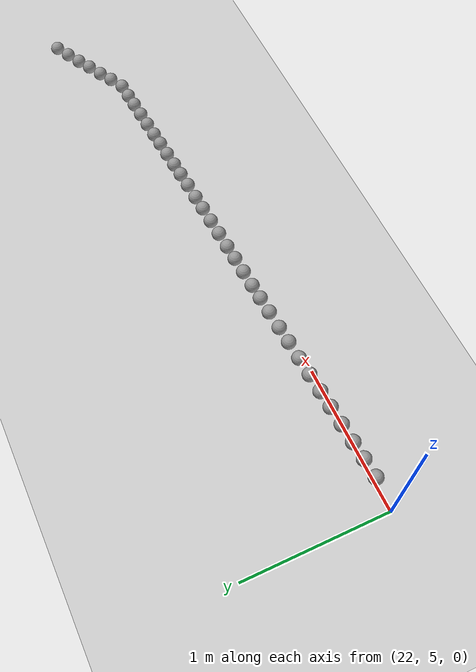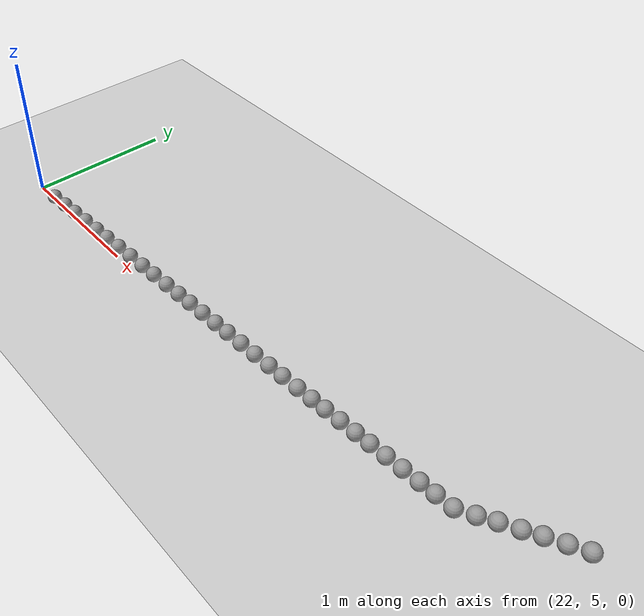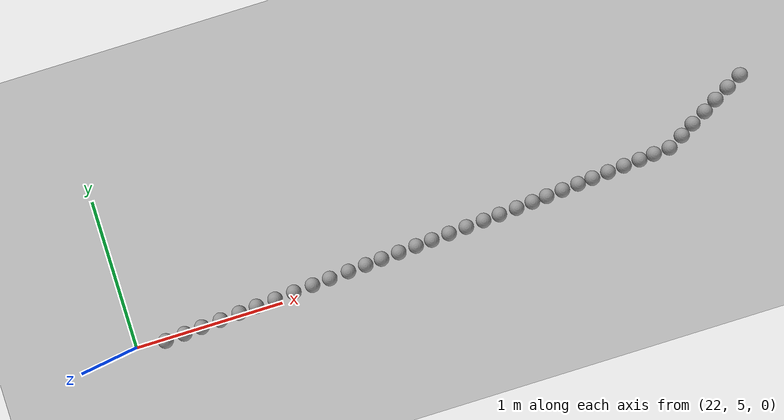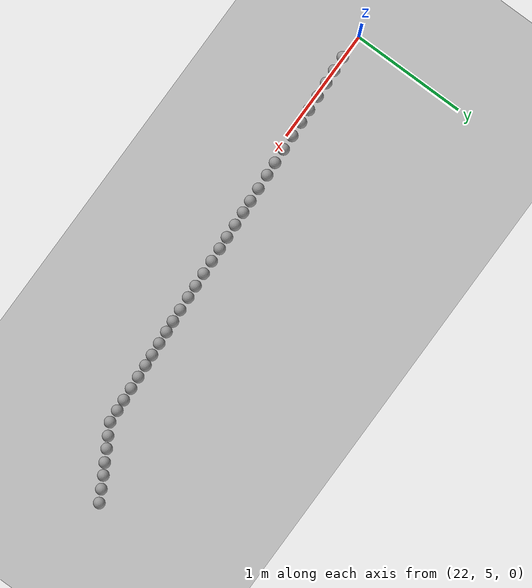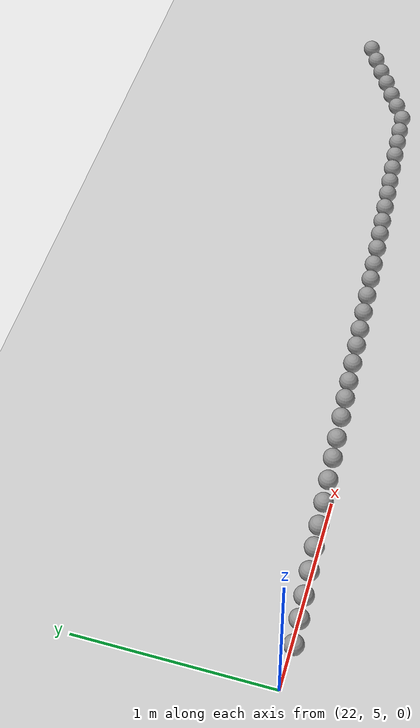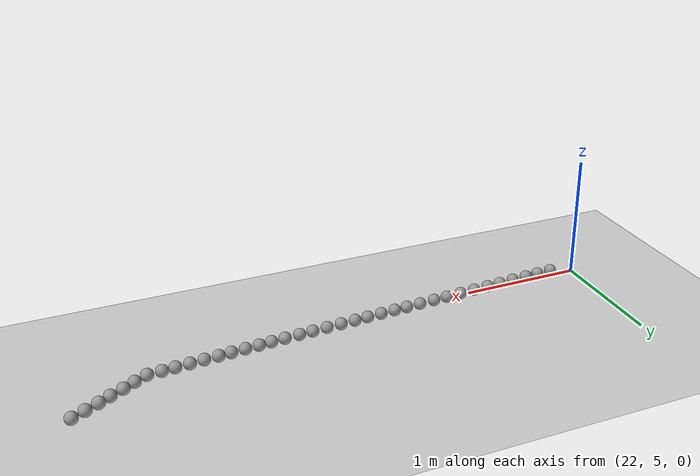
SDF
<sdf version="1.6">
 <world name="default">
  <model name="ground_plane">
   <static>1</static>
   <link name="link">
    <collision name="collision">
     <geometry><plane><normal>0 0 1</normal><size>100 100</size></plane></geometry>
     <surface><friction><ode><mu>100</mu><mu2>50</mu2></ode></friction></surface>
    </collision>
    <visual name="visual">
     <cast_shadows>0</cast_shadows>
     <geometry><plane><normal>0 0 1</normal><size>100 100</size></plane></geometry>
     <material>
      <script><uri>file://media/materials/scripts/gazebo.material</uri><name>Gazebo/Grey</name></script>
     </material>
    </visual>
   </link>
  </model>
  <model name="unit_sphere_0_304">
   <pose>26.300000 5.538000 0.050000 0 -0 0</pose>
   <link name="link">
    <inertial>
     <mass>1</mass>
     <inertia><ixx>0.1</ixx><ixy>0</ixy><ixz>0</ixz><iyy>0.1</iyy><iyz>0</iyz><izz>0.1</izz></inertia>
    </inertial>
    <collision name="collision"><geometry><sphere><radius>0.050000</radius></sphere></geometry></collision>
    <visual name="visual">
     <geometry><sphere><radius>0.050000</radius></sphere></geometry>
     <material>
      <script><name>Gazebo/Grey</name><uri>file://media/materials/scripts/gazebo.material</uri></script>
     </material>
    </visual>
   </link>
  </model>
  <model name="unit_sphere_0_305">
   <pose>26.200000 5.485000 0.050000 0 -0 0</pose>
   <link name="link">
    <inertial>
     <mass>1</mass>
     <inertia><ixx>0.1</ixx><ixy>0</ixy><ixz>0</ixz><iyy>0.1</iyy><iyz>0</iyz><izz>0.1</izz></inertia>
    </inertial>
    <collision name="collision"><geometry><sphere><radius>0.050000</radius></sphere></geometry></collision>
    <visual name="visual">
     <geometry><sphere><radius>0.050000</radius></sphere></geometry>
     <material>
      <script><name>Gazebo/Grey</name><uri>file://media/materials/scripts/gazebo.material</uri></script>
     </material>
    </visual>
   </link>
  </model>
  <model name="unit_sphere_0_306">
   <pose>26.100000 5.432000 0.050000 0 -0 0</pose>
   <link name="link">
    <inertial>
     <mass>1</mass>
     <inertia><ixx>0.1</ixx><ixy>0</ixy><ixz>0</ixz><iyy>0.1</iyy><iyz>0</iyz><izz>0.1</izz></inertia>
    </inertial>
    <collision name="collision"><geometry><sphere><radius>0.050000</radius></sphere></geometry></collision>
    <visual name="visual">
     <geometry><sphere><radius>0.050000</radius></sphere></geometry>
     <material>
      <script><name>Gazebo/Grey</name><uri>file://media/materials/scripts/gazebo.material</uri></script>
     </material>
    </visual>
   </link>
  </model>
  <model name="unit_sphere_0_307">
   <pose>26.010000 5.379000 0.050000 0 -0 0</pose>
   <link name="link">
    <inertial>
     <mass>1</mass>
     <inertia><ixx>0.1</ixx><ixy>0</ixy><ixz>0</ixz><iyy>0.1</iyy><iyz>0</iyz><izz>0.1</izz></inertia>
    </inertial>
    <collision name="collision"><geometry><sphere><radius>0.050000</radius></sphere></geometry></collision>
    <visual name="visual">
     <geometry><sphere><radius>0.050000</radius></sphere></geometry>
     <material>
      <script><name>Gazebo/Grey</name><uri>file://media/materials/scripts/gazebo.material</uri></script>
     </material>
    </visual>
   </link>
  </model>
  <model name="unit_sphere_0_308">
   <pose>25.910000 5.326000 0.050000 0 -0 0</pose>
   <link name="link">
    <inertial>
     <mass>1</mass>
     <inertia><ixx>0.1</ixx><ixy>0</ixy><ixz>0</ixz><iyy>0.1</iyy><iyz>0</iyz><izz>0.1</izz></inertia>
    </inertial>
    <collision name="collision"><geometry><sphere><radius>0.050000</radius></sphere></geometry></collision>
    <visual name="visual">
     <geometry><sphere><radius>0.050000</radius></sphere></geometry>
     <material>
      <script><name>Gazebo/Grey</name><uri>file://media/materials/scripts/gazebo.material</uri></script>
     </material>
    </visual>
   </link>
  </model>
  <model name="unit_sphere_0_309">
   <pose>25.820000 5.273000 0.050000 0 -0 0</pose>
   <link name="link">
    <inertial>
     <mass>1</mass>
     <inertia><ixx>0.1</ixx><ixy>0</ixy><ixz>0</ixz><iyy>0.1</iyy><iyz>0</iyz><izz>0.1</izz></inertia>
    </inertial>
    <collision name="collision"><geometry><sphere><radius>0.050000</radius></sphere></geometry></collision>
    <visual name="visual">
     <geometry><sphere><radius>0.050000</radius></sphere></geometry>
     <material>
      <script><name>Gazebo/Grey</name><uri>file://media/materials/scripts/gazebo.material</uri></script>
     </material>
    </visual>
   </link>
  </model>
  <model name="unit_sphere_0_310">
   <pose>25.720000 5.220000 0.050000 0 -0 0</pose>
   <link name="link">
    <inertial>
     <mass>1</mass>
     <inertia><ixx>0.1</ixx><ixy>0</ixy><ixz>0</ixz><iyy>0.1</iyy><iyz>0</iyz><izz>0.1</izz></inertia>
    </inertial>
    <collision name="collision"><geometry><sphere><radius>0.050000</radius></sphere></geometry></collision>
    <visual name="visual">
     <geometry><sphere><radius>0.050000</radius></sphere></geometry>
     <material>
      <script><name>Gazebo/Grey</name><uri>file://media/materials/scripts/gazebo.material</uri></script>
     </material>
    </visual>
   </link>
  </model>
  <model name="unit_sphere_0_311">
   <pose>25.610000 5.212000 0.050000 0 -0 0</pose>
   <link name="link">
    <inertial>
     <mass>1</mass>
     <inertia><ixx>0.1</ixx><ixy>0</ixy><ixz>0</ixz><iyy>0.1</iyy><iyz>0</iyz><izz>0.1</izz></inertia>
    </inertial>
    <collision name="collision"><geometry><sphere><radius>0.050000</radius></sphere></geometry></collision>
    <visual name="visual">
     <geometry><sphere><radius>0.050000</radius></sphere></geometry>
     <material>
      <script><name>Gazebo/Grey</name><uri>file://media/materials/scripts/gazebo.material</uri></script>
     </material>
    </visual>
   </link>
  </model>
  <model name="unit_sphere_0_312">
   <pose>25.510000 5.204000 0.050000 0 -0 0</pose>
   <link name="link">
    <inertial>
     <mass>1</mass>
     <inertia><ixx>0.1</ixx><ixy>0</ixy><ixz>0</ixz><iyy>0.1</iyy><iyz>0</iyz><izz>0.1</izz></inertia>
    </inertial>
    <collision name="collision"><geometry><sphere><radius>0.050000</radius></sphere></geometry></collision>
    <visual name="visual">
     <geometry><sphere><radius>0.050000</radius></sphere></geometry>
     <material>
      <script><name>Gazebo/Grey</name><uri>file://media/materials/scripts/gazebo.material</uri></script>
     </material>
    </visual>
   </link>
  </model>
  <model name="unit_sphere_0_313">
   <pose>25.400000 5.196000 0.050000 0 -0 0</pose>
   <link name="link">
    <inertial>
     <mass>1</mass>
     <inertia><ixx>0.1</ixx><ixy>0</ixy><ixz>0</ixz><iyy>0.1</iyy><iyz>0</iyz><izz>0.1</izz></inertia>
    </inertial>
    <collision name="collision"><geometry><sphere><radius>0.050000</radius></sphere></geometry></collision>
    <visual name="visual">
     <geometry><sphere><radius>0.050000</radius></sphere></geometry>
     <material>
      <script><name>Gazebo/Grey</name><uri>file://media/materials/scripts/gazebo.material</uri></script>
     </material>
    </visual>
   </link>
  </model>
  <model name="unit_sphere_0_314">
   <pose>25.290000 5.188000 0.050000 0 -0 0</pose>
   <link name="link">
    <inertial>
     <mass>1</mass>
     <inertia><ixx>0.1</ixx><ixy>0</ixy><ixz>0</ixz><iyy>0.1</iyy><iyz>0</iyz><izz>0.1</izz></inertia>
    </inertial>
    <collision name="collision"><geometry><sphere><radius>0.050000</radius></sphere></geometry></collision>
    <visual name="visual">
     <geometry><sphere><radius>0.050000</radius></sphere></geometry>
     <material>
      <script><name>Gazebo/Grey</name><uri>file://media/materials/scripts/gazebo.material</uri></script>
     </material>
    </visual>
   </link>
  </model>
  <model name="unit_sphere_0_315">
   <pose>25.180000 5.180000 0.050000 0 -0 0</pose>
   <link name="link">
    <inertial>
     <mass>1</mass>
     <inertia><ixx>0.1</ixx><ixy>0</ixy><ixz>0</ixz><iyy>0.1</iyy><iyz>0</iyz><izz>0.1</izz></inertia>
    </inertial>
    <collision name="collision"><geometry><sphere><radius>0.050000</radius></sphere></geometry></collision>
    <visual name="visual">
     <geometry><sphere><radius>0.050000</radius></sphere></geometry>
     <material>
      <script><name>Gazebo/Grey</name><uri>file://media/materials/scripts/gazebo.material</uri></script>
     </material>
    </visual>
   </link>
  </model>
  <model name="unit_sphere_0_316">
   <pose>25.080000 5.172000 0.050000 0 -0 0</pose>
   <link name="link">
    <inertial>
     <mass>1</mass>
     <inertia><ixx>0.1</ixx><ixy>0</ixy><ixz>0</ixz><iyy>0.1</iyy><iyz>0</iyz><izz>0.1</izz></inertia>
    </inertial>
    <collision name="collision"><geometry><sphere><radius>0.050000</radius></sphere></geometry></collision>
    <visual name="visual">
     <geometry><sphere><radius>0.050000</radius></sphere></geometry>
     <material>
      <script><name>Gazebo/Grey</name><uri>file://media/materials/scripts/gazebo.material</uri></script>
     </material>
    </visual>
   </link>
  </model>
  <model name="unit_sphere_0_317">
   <pose>24.970000 5.164000 0.050000 0 -0 0</pose>
   <link name="link">
    <inertial>
     <mass>1</mass>
     <inertia><ixx>0.1</ixx><ixy>0</ixy><ixz>0</ixz><iyy>0.1</iyy><iyz>0</iyz><izz>0.1</izz></inertia>
    </inertial>
    <collision name="collision"><geometry><sphere><radius>0.050000</radius></sphere></geometry></collision>
    <visual name="visual">
     <geometry><sphere><radius>0.050000</radius></sphere></geometry>
     <material>
      <script><name>Gazebo/Grey</name><uri>file://media/materials/scripts/gazebo.material</uri></script>
     </material>
    </visual>
   </link>
  </model>
  <model name="unit_sphere_0_318">
   <pose>24.860000 5.156000 0.050000 0 -0 0</pose>
   <link name="link">
    <inertial>
     <mass>1</mass>
     <inertia><ixx>0.1</ixx><ixy>0</ixy><ixz>0</ixz><iyy>0.1</iyy><iyz>0</iyz><izz>0.1</izz></inertia>
    </inertial>
    <collision name="collision"><geometry><sphere><radius>0.050000</radius></sphere></geometry></collision>
    <visual name="visual">
     <geometry><sphere><radius>0.050000</radius></sphere></geometry>
     <material>
      <script><name>Gazebo/Grey</name><uri>file://media/materials/scripts/gazebo.material</uri></script>
     </material>
    </visual>
   </link>
  </model>
  <model name="unit_sphere_0_319">
   <pose>24.760000 5.148000 0.050000 0 -0 0</pose>
   <link name="link">
    <inertial>
     <mass>1</mass>
     <inertia><ixx>0.1</ixx><ixy>0</ixy><ixz>0</ixz><iyy>0.1</iyy><iyz>0</iyz><izz>0.1</izz></inertia>
    </inertial>
    <collision name="collision"><geometry><sphere><radius>0.050000</radius></sphere></geometry></collision>
    <visual name="visual">
     <geometry><sphere><radius>0.050000</radius></sphere></geometry>
     <material>
      <script><name>Gazebo/Grey</name><uri>file://media/materials/scripts/gazebo.material</uri></script>
     </material>
    </visual>
   </link>
  </model>
  <model name="unit_sphere_0_320">
   <pose>24.650000 5.140000 0.050000 0 -0 0</pose>
   <link name="link">
    <inertial>
     <mass>1</mass>
     <inertia><ixx>0.1</ixx><ixy>0</ixy><ixz>0</ixz><iyy>0.1</iyy><iyz>0</iyz><izz>0.1</izz></inertia>
    </inertial>
    <collision name="collision"><geometry><sphere><radius>0.050000</radius></sphere></geometry></collision>
    <visual name="visual">
     <geometry><sphere><radius>0.050000</radius></sphere></geometry>
     <material>
      <script><name>Gazebo/Grey</name><uri>file://media/materials/scripts/gazebo.material</uri></script>
     </material>
    </visual>
   </link>
  </model>
  <model name="unit_sphere_0_321">
   <pose>24.530000 5.133000 0.050000 0 -0 0</pose>
   <link name="link">
    <inertial>
     <mass>1</mass>
     <inertia><ixx>0.1</ixx><ixy>0</ixy><ixz>0</ixz><iyy>0.1</iyy><iyz>0</iyz><izz>0.1</izz></inertia>
    </inertial>
    <collision name="collision"><geometry><sphere><radius>0.050000</radius></sphere></geometry></collision>
    <visual name="visual">
     <geometry><sphere><radius>0.050000</radius></sphere></geometry>
     <material>
      <script><name>Gazebo/Grey</name><uri>file://media/materials/scripts/gazebo.material</uri></script>
     </material>
    </visual>
   </link>
  </model>
  <model name="unit_sphere_0_322">
   <pose>24.420000 5.126000 0.050000 0 -0 0</pose>
   <link name="link">
    <inertial>
     <mass>1</mass>
     <inertia><ixx>0.1</ixx><ixy>0</ixy><ixz>0</ixz><iyy>0.1</iyy><iyz>0</iyz><izz>0.1</izz></inertia>
    </inertial>
    <collision name="collision"><geometry><sphere><radius>0.050000</radius></sphere></geometry></collision>
    <visual name="visual">
     <geometry><sphere><radius>0.050000</radius></sphere></geometry>
     <material>
      <script><name>Gazebo/Grey</name><uri>file://media/materials/scripts/gazebo.material</uri></script>
     </material>
    </visual>
   </link>
  </model>
  <model name="unit_sphere_0_323">
   <pose>24.300000 5.119000 0.050000 0 -0 0</pose>
   <link name="link">
    <inertial>
     <mass>1</mass>
     <inertia><ixx>0.1</ixx><ixy>0</ixy><ixz>0</ixz><iyy>0.1</iyy><iyz>0</iyz><izz>0.1</izz></inertia>
    </inertial>
    <collision name="collision"><geometry><sphere><radius>0.050000</radius></sphere></geometry></collision>
    <visual name="visual">
     <geometry><sphere><radius>0.050000</radius></sphere></geometry>
     <material>
      <script><name>Gazebo/Grey</name><uri>file://media/materials/scripts/gazebo.material</uri></script>
     </material>
    </visual>
   </link>
  </model>
  <model name="unit_sphere_0_324">
   <pose>24.180000 5.112000 0.050000 0 -0 0</pose>
   <link name="link">
    <inertial>
     <mass>1</mass>
     <inertia><ixx>0.1</ixx><ixy>0</ixy><ixz>0</ixz><iyy>0.1</iyy><iyz>0</iyz><izz>0.1</izz></inertia>
    </inertial>
    <collision name="collision"><geometry><sphere><radius>0.050000</radius></sphere></geometry></collision>
    <visual name="visual">
     <geometry><sphere><radius>0.050000</radius></sphere></geometry>
     <material>
      <script><name>Gazebo/Grey</name><uri>file://media/materials/scripts/gazebo.material</uri></script>
     </material>
    </visual>
   </link>
  </model>
  <model name="unit_sphere_0_325">
   <pose>24.060000 5.105000 0.050000 0 -0 0</pose>
   <link name="link">
    <inertial>
     <mass>1</mass>
     <inertia><ixx>0.1</ixx><ixy>0</ixy><ixz>0</ixz><iyy>0.1</iyy><iyz>0</iyz><izz>0.1</izz></inertia>
    </inertial>
    <collision name="collision"><geometry><sphere><radius>0.050000</radius></sphere></geometry></collision>
    <visual name="visual">
     <geometry><sphere><radius>0.050000</radius></sphere></geometry>
     <material>
      <script><name>Gazebo/Grey</name><uri>file://media/materials/scripts/gazebo.material</uri></script>
     </material>
    </visual>
   </link>
  </model>
  <model name="unit_sphere_0_326">
   <pose>23.950000 5.098000 0.050000 0 -0 0</pose>
   <link name="link">
    <inertial>
     <mass>1</mass>
     <inertia><ixx>0.1</ixx><ixy>0</ixy><ixz>0</ixz><iyy>0.1</iyy><iyz>0</iyz><izz>0.1</izz></inertia>
    </inertial>
    <collision name="collision"><geometry><sphere><radius>0.050000</radius></sphere></geometry></collision>
    <visual name="visual">
     <geometry><sphere><radius>0.050000</radius></sphere></geometry>
     <material>
      <script><name>Gazebo/Grey</name><uri>file://media/materials/scripts/gazebo.material</uri></script>
     </material>
    </visual>
   </link>
  </model>
  <model name="unit_sphere_0_327">
   <pose>23.830000 5.091000 0.050000 0 -0 0</pose>
   <link name="link">
    <inertial>
     <mass>1</mass>
     <inertia><ixx>0.1</ixx><ixy>0</ixy><ixz>0</ixz><iyy>0.1</iyy><iyz>0</iyz><izz>0.1</izz></inertia>
    </inertial>
    <collision name="collision"><geometry><sphere><radius>0.050000</radius></sphere></geometry></collision>
    <visual name="visual">
     <geometry><sphere><radius>0.050000</radius></sphere></geometry>
     <material>
      <script><name>Gazebo/Grey</name><uri>file://media/materials/scripts/gazebo.material</uri></script>
     </material>
    </visual>
   </link>
  </model>
  <model name="unit_sphere_0_328">
   <pose>23.710000 5.084000 0.050000 0 -0 0</pose>
   <link name="link">
    <inertial>
     <mass>1</mass>
     <inertia><ixx>0.1</ixx><ixy>0</ixy><ixz>0</ixz><iyy>0.1</iyy><iyz>0</iyz><izz>0.1</izz></inertia>
    </inertial>
    <collision name="collision"><geometry><sphere><radius>0.050000</radius></sphere></geometry></collision>
    <visual name="visual">
     <geometry><sphere><radius>0.050000</radius></sphere></geometry>
     <material>
      <script><name>Gazebo/Grey</name><uri>file://media/materials/scripts/gazebo.material</uri></script>
     </material>
    </visual>
   </link>
  </model>
  <model name="unit_sphere_0_329">
   <pose>23.600000 5.077000 0.050000 0 -0 0</pose>
   <link name="link">
    <inertial>
     <mass>1</mass>
     <inertia><ixx>0.1</ixx><ixy>0</ixy><ixz>0</ixz><iyy>0.1</iyy><iyz>0</iyz><izz>0.1</izz></inertia>
    </inertial>
    <collision name="collision"><geometry><sphere><radius>0.050000</radius></sphere></geometry></collision>
    <visual name="visual">
     <geometry><sphere><radius>0.050000</radius></sphere></geometry>
     <material>
      <script><name>Gazebo/Grey</name><uri>file://media/materials/scripts/gazebo.material</uri></script>
     </material>
    </visual>
   </link>
  </model>
  <model name="unit_sphere_0_330">
   <pose>23.480000 5.070000 0.050000 0 -0 0</pose>
   <link name="link">
    <inertial>
     <mass>1</mass>
     <inertia><ixx>0.1</ixx><ixy>0</ixy><ixz>0</ixz><iyy>0.1</iyy><iyz>0</iyz><izz>0.1</izz></inertia>
    </inertial>
    <collision name="collision"><geometry><sphere><radius>0.050000</radius></sphere></geometry></collision>
    <visual name="visual">
     <geometry><sphere><radius>0.050000</radius></sphere></geometry>
     <material>
      <script><name>Gazebo/Grey</name><uri>file://media/materials/scripts/gazebo.material</uri></script>
     </material>
    </visual>
   </link>
  </model>
  <model name="unit_sphere_0_331">
   <pose>23.350000 5.062000 0.050000 0 -0 0</pose>
   <link name="link">
    <inertial>
     <mass>1</mass>
     <inertia><ixx>0.1</ixx><ixy>0</ixy><ixz>0</ixz><iyy>0.1</iyy><iyz>0</iyz><izz>0.1</izz></inertia>
    </inertial>
    <collision name="collision"><geometry><sphere><radius>0.050000</radius></sphere></geometry></collision>
    <visual name="visual">
     <geometry><sphere><radius>0.050000</radius></sphere></geometry>
     <material>
      <script><name>Gazebo/Grey</name><uri>file://media/materials/scripts/gazebo.material</uri></script>
     </material>
    </visual>
   </link>
  </model>
  <model name="unit_sphere_0_332">
   <pose>23.230000 5.054000 0.050000 0 -0 0</pose>
   <link name="link">
    <inertial>
     <mass>1</mass>
     <inertia><ixx>0.1</ixx><ixy>0</ixy><ixz>0</ixz><iyy>0.1</iyy><iyz>0</iyz><izz>0.1</izz></inertia>
    </inertial>
    <collision name="collision"><geometry><sphere><radius>0.050000</radius></sphere></geometry></collision>
    <visual name="visual">
     <geometry><sphere><radius>0.050000</radius></sphere></geometry>
     <material>
      <script><name>Gazebo/Grey</name><uri>file://media/materials/scripts/gazebo.material</uri></script>
     </material>
    </visual>
   </link>
  </model>
  <model name="unit_sphere_0_333">
   <pose>23.100000 5.046000 0.050000 0 -0 0</pose>
   <link name="link">
    <inertial>
     <mass>1</mass>
     <inertia><ixx>0.1</ixx><ixy>0</ixy><ixz>0</ixz><iyy>0.1</iyy><iyz>0</iyz><izz>0.1</izz></inertia>
    </inertial>
    <collision name="collision"><geometry><sphere><radius>0.050000</radius></sphere></geometry></collision>
    <visual name="visual">
     <geometry><sphere><radius>0.050000</radius></sphere></geometry>
     <material>
      <script><name>Gazebo/Grey</name><uri>file://media/materials/scripts/gazebo.material</uri></script>
     </material>
    </visual>
   </link>
  </model>
  <model name="unit_sphere_0_334">
   <pose>22.970000 5.038000 0.050000 0 -0 0</pose>
   <link name="link">
    <inertial>
     <mass>1</mass>
     <inertia><ixx>0.1</ixx><ixy>0</ixy><ixz>0</ixz><iyy>0.1</iyy><iyz>0</iyz><izz>0.1</izz></inertia>
    </inertial>
    <collision name="collision"><geometry><sphere><radius>0.050000</radius></sphere></geometry></collision>
    <visual name="visual">
     <geometry><sphere><radius>0.050000</radius></sphere></geometry>
     <material>
      <script><name>Gazebo/Grey</name><uri>file://media/materials/scripts/gazebo.material</uri></script>
     </material>
    </visual>
   </link>
  </model>
  <model name="unit_sphere_0_335">
   <pose>22.840000 5.030000 0.050000 0 -0 0</pose>
   <link name="link">
    <inertial>
     <mass>1</mass>
     <inertia><ixx>0.1</ixx><ixy>0</ixy><ixz>0</ixz><iyy>0.1</iyy><iyz>0</iyz><izz>0.1</izz></inertia>
    </inertial>
    <collision name="collision"><geometry><sphere><radius>0.050000</radius></sphere></geometry></collision>
    <visual name="visual">
     <geometry><sphere><radius>0.050000</radius></sphere></geometry>
     <material>
      <script><name>Gazebo/Grey</name><uri>file://media/materials/scripts/gazebo.material</uri></script>
     </material>
    </visual>
   </link>
  </model>
  <model name="unit_sphere_0_336">
   <pose>22.720000 5.022000 0.050000 0 -0 0</pose>
   <link name="link">
    <inertial>
     <mass>1</mass>
     <inertia><ixx>0.1</ixx><ixy>0</ixy><ixz>0</ixz><iyy>0.1</iyy><iyz>0</iyz><izz>0.1</izz></inertia>
    </inertial>
    <collision name="collision"><geometry><sphere><radius>0.050000</radius></sphere></geometry></collision>
    <visual name="visual">
     <geometry><sphere><radius>0.050000</radius></sphere></geometry>
     <material>
      <script><name>Gazebo/Grey</name><uri>file://media/materials/scripts/gazebo.material</uri></script>
     </material>
    </visual>
   </link>
  </model>
  <model name="unit_sphere_0_337">
   <pose>22.590000 5.014000 0.050000 0 -0 0</pose>
   <link name="link">
    <inertial>
     <mass>1</mass>
     <inertia><ixx>0.1</ixx><ixy>0</ixy><ixz>0</ixz><iyy>0.1</iyy><iyz>0</iyz><izz>0.1</izz></inertia>
    </inertial>
    <collision name="collision"><geometry><sphere><radius>0.050000</radius></sphere></geometry></collision>
    <visual name="visual">
     <geometry><sphere><radius>0.050000</radius></sphere></geometry>
     <material>
      <script><name>Gazebo/Grey</name><uri>file://media/materials/scripts/gazebo.material</uri></script>
     </material>
    </visual>
   </link>
  </model>
  <model name="unit_sphere_0_338">
   <pose>22.460000 5.006000 0.050000 0 -0 0</pose>
   <link name="link">
    <inertial>
     <mass>1</mass>
     <inertia><ixx>0.1</ixx><ixy>0</ixy><ixz>0</ixz><iyy>0.1</iyy><iyz>0</iyz><izz>0.1</izz></inertia>
    </inertial>
    <collision name="collision"><geometry><sphere><radius>0.050000</radius></sphere></geometry></collision>
    <visual name="visual">
     <geometry><sphere><radius>0.050000</radius></sphere></geometry>
     <material>
      <script><name>Gazebo/Grey</name><uri>file://media/materials/scripts/gazebo.material</uri></script>
     </material>
    </visual>
   </link>
  </model>
  <model name="unit_sphere_0_339">
   <pose>22.340000 4.998000 0.050000 0 -0 0</pose>
   <link name="link">
    <inertial>
     <mass>1</mass>
     <inertia><ixx>0.1</ixx><ixy>0</ixy><ixz>0</ixz><iyy>0.1</iyy><iyz>0</iyz><izz>0.1</izz></inertia>
    </inertial>
    <collision name="collision"><geometry><sphere><radius>0.050000</radius></sphere></geometry></collision>
    <visual name="visual">
     <geometry><sphere><radius>0.050000</radius></sphere></geometry>
     <material>
      <script><name>Gazebo/Grey</name><uri>file://media/materials/scripts/gazebo.material</uri></script>
     </material>
    </visual>
   </link>
  </model>
  <model name="unit_sphere_0_340">
   <pose>22.210000 4.990000 0.050000 0 -0 0</pose>
   <link name="link">
    <inertial>
     <mass>1</mass>
     <inertia><ixx>0.1</ixx><ixy>0</ixy><ixz>0</ixz><iyy>0.1</iyy><iyz>0</iyz><izz>0.1</izz></inertia>
    </inertial>
    <collision name="collision"><geometry><sphere><radius>0.050000</radius></sphere></geometry></collision>
    <visual name="visual">
     <geometry><sphere><radius>0.050000</radius></sphere></geometry>
     <material>
      <script><name>Gazebo/Grey</name><uri>file://media/materials/scripts/gazebo.material</uri></script>
     </material>
    </visual>
   </link>
  </model>
 </world>
</sdf>
